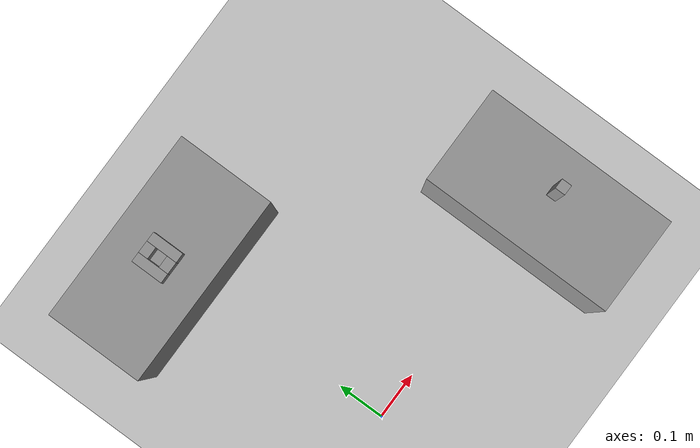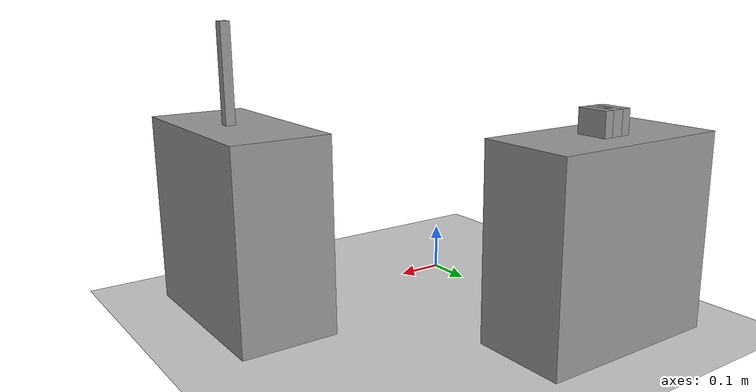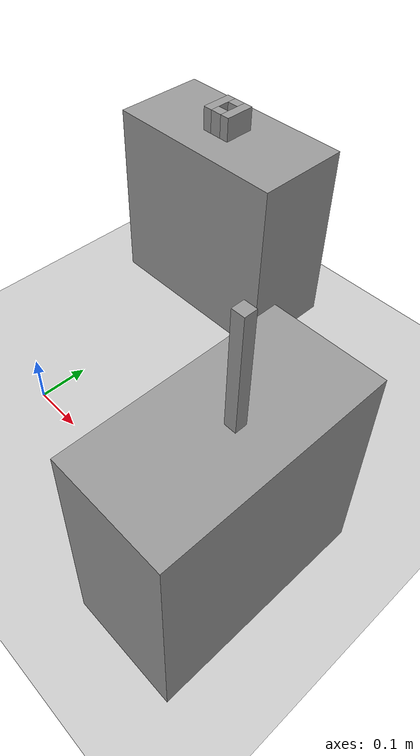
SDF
<?xml version="1.0" ?>
<sdf version="1.6">
  <world name="pick_place">
    <!-- 기본 물리 엔진과 환경 설정 -->
    <include>
      <uri>model://ground_plane</uri>
    </include>
    <include>
      <uri>model://sun</uri>
    </include>

    <include>
      <uri>model://table1</uri>
      <static>true</static>
    </include>

    <!-- Table 2 -->
    <include>
      <uri>model://table2</uri>
      <static>true</static>
    </include>
    <!-- Peg -->
    <include>
      <uri>model://peg</uri>
      <static>false</static>
    </include>
    <!-- Hole -->
    <include>
      <uri>model://hole</uri>
      <static>true</static>
    </include>
  </world>
</sdf>

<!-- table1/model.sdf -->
<sdf version='1.6'>
  <model name='table1'>
    <link name='link'>
      <inertial>
        <pose>0.5 0 0.2 0 0 0</pose>
        <mass>10</mass>
        <inertia>
          <ixx>0.166667</ixx>
          <ixy>0</ixy>
          <ixz>0</ixz>
          <iyy>0.166667</iyy>
          <iyz>0</iyz>
          <izz>0.166667</izz>
        </inertia>
      </inertial>
      <self_collide>0</self_collide>
      <enable_wind>0</enable_wind>
      <kinematic>0</kinematic>
      <visual name='visual'>
        <pose>0.5 0 0.2 0 0 0</pose>
        <geometry>
          <box>
            <size>0.2 0.4 0.4</size>
          </box>
        </geometry>
        <material>
          <script>
            <name>Gazebo/Grey</name>
            <uri>file://media/materials/scripts/gazebo.material</uri>
          </script>
          <shader type='pixel'/>
        </material>
        <transparency>0</transparency>
        <cast_shadows>1</cast_shadows>
      </visual>
      <collision name='collision'>
        <laser_retro>0</laser_retro>
        <max_contacts>10</max_contacts>
        <pose>0.5 0 0.2 0 0 0</pose>
        <geometry>
          <box>
            <size>0.2 0.4 0.4</size>
          </box>
        </geometry>
        <surface>
          <friction>
            <ode>
              <mu>1</mu>
              <mu2>1</mu2>
              <fdir1>0 0 0</fdir1>
              <slip1>0</slip1>
              <slip2>0</slip2>
            </ode>
            <torsional>
              <coefficient>1</coefficient>
              <patch_radius>0</patch_radius>
              <surface_radius>0</surface_radius>
              <use_patch_radius>1</use_patch_radius>
              <ode>
                <slip>0</slip>
              </ode>
            </torsional>
          </friction>
          <bounce>
            <restitution_coefficient>0</restitution_coefficient>
            <threshold>1e+06</threshold>
          </bounce>
          <contact>
            <collide_without_contact>0</collide_without_contact>
            <collide_without_contact_bitmask>1</collide_without_contact_bitmask>
            <collide_bitmask>1</collide_bitmask>
            <ode>
              <soft_cfm>0</soft_cfm>
              <soft_erp>0.2</soft_erp>
              <kp>1e+13</kp>
              <kd>1</kd>
              <max_vel>0.01</max_vel>
              <min_depth>0</min_depth>
            </ode>
            <bullet>
              <split_impulse>1</split_impulse>
              <split_impulse_penetration_threshold>-0.01</split_impulse_penetration_threshold>
              <soft_cfm>0</soft_cfm>
              <soft_erp>0.2</soft_erp>
              <kp>1e+13</kp>
              <kd>1</kd>
            </bullet>
          </contact>
        </surface>
      </collision>
    </link>
    <static>1</static>
    <allow_auto_disable>1</allow_auto_disable>
  </model>
</sdf>

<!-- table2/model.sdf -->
<sdf version='1.6'>
  <model name='table2'>
    <link name='link'>
      <inertial>
        <pose>0 0.5 0.2 0 0 0</pose>
        <mass>10</mass>
        <inertia>
          <ixx>0.166667</ixx>
          <ixy>0</ixy>
          <ixz>0</ixz>
          <iyy>0.166667</iyy>
          <iyz>0</iyz>
          <izz>0.166667</izz>
        </inertia>
      </inertial>
      <self_collide>0</self_collide>
      <enable_wind>0</enable_wind>
      <kinematic>0</kinematic>
      <visual name='visual'>
        <pose>0 0.5 0.2 0 0 0</pose>
        <geometry>
          <box>
            <size>0.4 0.2 0.4</size>
          </box>
        </geometry>
        <material>
          <script>
            <name>Gazebo/Grey</name>
            <uri>file://media/materials/scripts/gazebo.material</uri>
          </script>
          <shader type='pixel'/>
        </material>
        <transparency>0</transparency>
        <cast_shadows>1</cast_shadows>
      </visual>
      <collision name='collision'>
        <laser_retro>0</laser_retro>
        <max_contacts>10</max_contacts>
        <pose>0 0.5 0.2 0 0 0</pose>
        <geometry>
          <box>
            <size>0.4 0.2 0.4</size>
          </box>
        </geometry>
        <surface>
          <friction>
            <ode>
              <mu>1</mu>
              <mu2>1</mu2>
              <fdir1>0 0 0</fdir1>
              <slip1>0</slip1>
              <slip2>0</slip2>
            </ode>
            <torsional>
              <coefficient>1</coefficient>
              <patch_radius>0</patch_radius>
              <surface_radius>0</surface_radius>
              <use_patch_radius>1</use_patch_radius>
              <ode>
                <slip>0</slip>
              </ode>
            </torsional>
          </friction>
          <bounce>
            <restitution_coefficient>0</restitution_coefficient>
            <threshold>1e+06</threshold>
          </bounce>
          <contact>
            <collide_without_contact>0</collide_without_contact>
            <collide_without_contact_bitmask>1</collide_without_contact_bitmask>
            <collide_bitmask>1</collide_bitmask>
            <ode>
              <soft_cfm>0</soft_cfm>
              <soft_erp>0.2</soft_erp>
              <kp>1e+13</kp>
              <kd>1</kd>
              <max_vel>0.01</max_vel>
              <min_depth>0</min_depth>
            </ode>
            <bullet>
              <split_impulse>1</split_impulse>
              <split_impulse_penetration_threshold>-0.01</split_impulse_penetration_threshold>
              <soft_cfm>0</soft_cfm>
              <soft_erp>0.2</soft_erp>
              <kp>1e+13</kp>
              <kd>1</kd>
            </bullet>
          </contact>
        </surface>
      </collision>
    </link>
    <static>1</static>
    <allow_auto_disable>1</allow_auto_disable>
  </model>
</sdf>

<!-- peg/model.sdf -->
<sdf version='1.6'>
  <model name='peg'>
    <link name='link'>
      <inertial>
        <pose>0.515 0 0.501 0 -0 0</pose>
        <mass>0.5</mass>
        <inertia>
          <ixx>0.01</ixx>
          <ixy>0</ixy>
          <ixz>0</ixz>
          <iyy>0.01</iyy>
          <iyz>0</iyz>
          <izz>0.01</izz>
        </inertia>
      </inertial>
      <self_collide>0</self_collide>
      <enable_wind>0</enable_wind>
      <kinematic>0</kinematic>
      <visual name='visual'>
        <geometry>
          <box>
            <size>0.02 0.02 0.2</size>
          </box>
        </geometry>
        <material>
          <script>
            <name>Gazebo/Grey</name>
            <uri>file://media/materials/scripts/gazebo.material</uri>
          </script>
          <shader type='pixel'/>
        </material>
        <pose>0.515 0 0.501 0 -0 0</pose>
        <transparency>0</transparency>
        <cast_shadows>1</cast_shadows>
      </visual>
      <collision name='collision'>
        <laser_retro>0</laser_retro>
        <max_contacts>10</max_contacts>
        <pose>0.515 0 0.501 0 -0 0</pose>
        <geometry>
          <box>
            <size>0.02 0.02 0.2</size>
          </box>
        </geometry>
        <surface>
          <friction>
            <ode>
              <mu>1.5</mu>
              <mu2>1.5</mu2>
              <fdir1>0 0 0</fdir1>
              <slip1>0</slip1>
              <slip2>0</slip2>
            </ode>
            <torsional>
              <coefficient>1</coefficient>
              <patch_radius>0</patch_radius>
              <surface_radius>0</surface_radius>
              <use_patch_radius>1</use_patch_radius>
              <ode>
                <slip>0</slip>
              </ode>
            </torsional>
          </friction>
          <bounce>
            <restitution_coefficient>0.1</restitution_coefficient>
            <threshold>1e+06</threshold>
          </bounce>
          <contact>
            <collide_without_contact>0</collide_without_contact>
            <collide_without_contact_bitmask>1</collide_without_contact_bitmask>
            <collide_bitmask>1</collide_bitmask>
            <ode>
              <soft_cfm>0</soft_cfm>
              <soft_erp>0.2</soft_erp>
              <kp>1e+13</kp>
              <kd>1</kd>
              <max_vel>0.1</max_vel>
              <min_depth>0</min_depth>
            </ode>
            <bullet>
              <split_impulse>1</split_impulse>
              <split_impulse_penetration_threshold>-0.01</split_impulse_penetration_threshold>
              <soft_cfm>0</soft_cfm>
              <soft_erp>0.2</soft_erp>
              <kp>1e+13</kp>
              <kd>1</kd>
            </bullet>
          </contact>
        </surface>
      </collision>
    </link>
    <static>0</static>
    <allow_auto_disable>1</allow_auto_disable>
  </model>
</sdf>

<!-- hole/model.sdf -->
<sdf version='1.6'>
  <model name='hole'>
    <link name='hole_link1'>
      <inertial>
        <pose>0.0225 0.5 0.425 0 -0 0</pose>
        <mass>0.5</mass>
        <inertia>
          <ixx>0.001</ixx>
          <iyy>0.001</iyy>
          <izz>0.001</izz>
        </inertia>
      </inertial>
      <self_collide>0</self_collide>
      <enable_wind>0</enable_wind>
      <kinematic>0</kinematic>
      <visual name='hole_visual1'>
        <pose>0.0225 0.5 0.425 0 -0 0</pose>
        <geometry>
          <box>
            <size>0.02 0.065 0.05</size>
          </box>
        </geometry>
        <material>
          <script>
            <name>Gazebo/Grey</name>
            <uri>file://media/materials/scripts/gazebo.material</uri>
          </script>
          <shader type='pixel'/>
        </material>
        <transparency>0</transparency>
        <cast_shadows>1</cast_shadows>
      </visual>
      <collision name='hole_collision1'>
        <laser_retro>0</laser_retro>
        <max_contacts>10</max_contacts>
        <pose>0.0225 0.5 0.425 0 -0 0</pose>
        <geometry>
          <box>
            <size>0.02 0.065 0.05</size>
          </box>
        </geometry>
      </collision>
    </link>

    <link name='hole_link2'>
      <inertial>
        <pose>-0.0225 0.5 0.425 0 -0 0</pose>
        <mass>0.5</mass>
        <inertia>
          <ixx>0.001</ixx>
          <iyy>0.001</iyy>
          <izz>0.001</izz>
        </inertia>
      </inertial>
      <self_collide>0</self_collide>
      <enable_wind>0</enable_wind>
      <kinematic>0</kinematic>
      <visual name='hole_visual2'>
        <pose>-0.0225 0.5 0.425 0 -0 0</pose>
        <geometry>
          <box>
            <size>0.02 0.065 0.05</size>
          </box>
        </geometry>
        <material>
          <script>
            <name>Gazebo/Grey</name>
            <uri>file://media/materials/scripts/gazebo.material</uri>
          </script>
          <shader type='pixel'/>
        </material>
        <transparency>0</transparency>
        <cast_shadows>1</cast_shadows>
      </visual>
      <collision name='hole_collision2'>
        <laser_retro>0</laser_retro>
        <max_contacts>10</max_contacts>
        <pose>-0.0225 0.5 0.425 0 -0 0</pose>
        <geometry>
          <box>
            <size>0.02 0.065 0.05</size>
          </box>
        </geometry>
      </collision>
    </link>

    <link name='hole_link3'>
      <inertial>
        <pose>0 0.4775 0.425 0 -0 0</pose>
        <mass>0.5</mass>
        <inertia>
          <ixx>0.001</ixx>
          <iyy>0.001</iyy>
          <izz>0.001</izz>
        </inertia>
      </inertial>
      <self_collide>0</self_collide>
      <enable_wind>0</enable_wind>
      <kinematic>0</kinematic>
      <visual name='hole_visual3'>
        <pose>0 0.4775 0.425 0 -0 0</pose>
        <geometry>
          <box>
            <size>0.025 0.02 0.05</size>
          </box>
        </geometry>
        <material>
          <script>
            <name>Gazebo/Grey</name>
            <uri>file://media/materials/scripts/gazebo.material</uri>
          </script>
          <shader type='pixel'/>
        </material>
        <transparency>0</transparency>
        <cast_shadows>1</cast_shadows>
      </visual>
      <collision name='hole_collision3'>
        <laser_retro>0</laser_retro>
        <max_contacts>10</max_contacts>
        <pose>0 0.4775 0.425 0 -0 0</pose>
        <geometry>
          <box>
            <size>0.025 0.02 0.05</size>
          </box>
        </geometry>
      </collision>
    </link>

    <link name='hole_link4'>
      <inertial>
        <pose>0 0.5225 0.425 0 -0 0</pose>
        <mass>0.5</mass>
        <inertia>
          <ixx>0.001</ixx>
          <iyy>0.001</iyy>
          <izz>0.001</izz>
        </inertia>
      </inertial>
      <self_collide>0</self_collide>
      <enable_wind>0</enable_wind>
      <kinematic>0</kinematic>
      <visual name='hole_visual4'>
        <pose>0 0.5225 0.425 0 -0 0</pose>
        <geometry>
          <box>
            <size>0.025 0.02 0.05</size>
          </box>
        </geometry>
        <material>
          <script>
            <name>Gazebo/Grey</name>
            <uri>file://media/materials/scripts/gazebo.material</uri>
          </script>
          <shader type='pixel'/>
        </material>
        <transparency>0</transparency>
        <cast_shadows>1</cast_shadows>
      </visual>
      <collision name='hole_collision4'>
        <laser_retro>0</laser_retro>
        <max_contacts>10</max_contacts>
        <pose>0 0.5225 0.425 0 -0 0</pose>
        <geometry>
          <box>
            <size>0.025 0.02 0.05</size>
          </box>
        </geometry>
      </collision>
    </link>

    <static>1</static>
    <allow_auto_disable>1</allow_auto_disable>
  </model>
</sdf>
